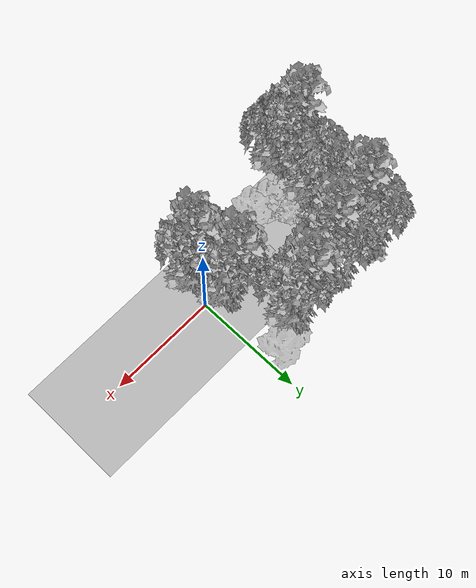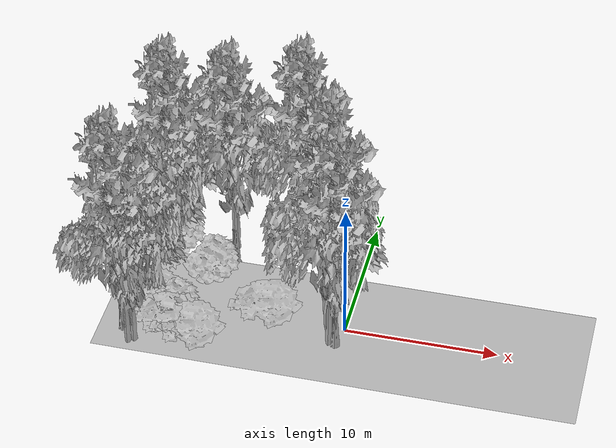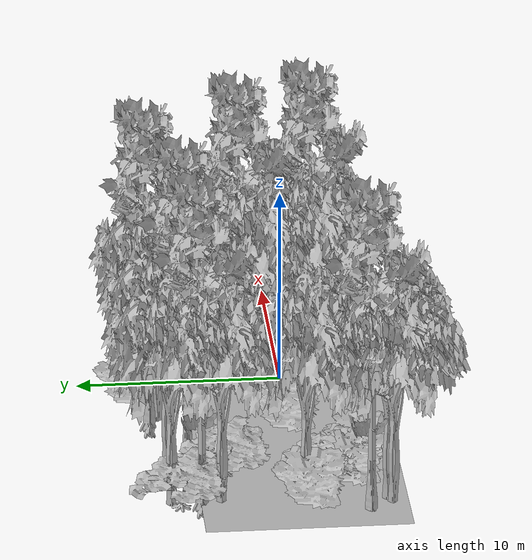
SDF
<sdf version="1.7">
 <world name="default">
  <model name="ground_plane">
   <static>1</static>
   <link name="link">
    <collision name="collision">
     <pose>-50 0 0 0 -0 0</pose>
     <geometry><plane><normal>0 0 1</normal><size>100 100</size></plane></geometry>
     <surface><contact><ode><min_depth>0.01</min_depth><max_vel>0</max_vel></ode></contact></surface>
    </collision>
    <visual name="grass">
     <cast_shadows>0</cast_shadows>
     <geometry>
      <mesh>
       <scale>0.5814285714285714 0.18142857142857144 0.1</scale>
       <uri>file://grass_plane/meshes/grass_plane.dae</uri>
      </mesh>
     </geometry>
    </visual>
   </link>
  </model>
  <model name="Tree 13">
   <static>1</static>
   <pose>-4.208597897966072 6.732384200677938 0 1.57079 -0 0</pose>
   <link name="link">
    <collision name="collision">
     <geometry><mesh><scale>3.5 5 3.5</scale><uri>model://tree_9/meshes/tree_9.obj</uri></mesh></geometry>
    </collision>
    <visual name="visual">
     <geometry><mesh><scale>3.5 5 3.5</scale><uri>model://tree_9/meshes/tree_9.obj</uri></mesh></geometry>
    </visual>
   </link>
  </model>
  <model name="Tree 110">
   <static>1</static>
   <pose>-9.627359830265355 -3.2420105650119186 0 1.57079 -0 0</pose>
   <link name="link">
    <collision name="collision">
     <geometry><mesh><scale>3 2 3</scale><uri>model://tree_3/meshes/tree_3.obj</uri></mesh></geometry>
    </collision>
    <visual name="visual">
     <geometry><mesh><scale>3 2 3</scale><uri>model://tree_3/meshes/tree_3.obj</uri></mesh></geometry>
    </visual>
   </link>
  </model>
  <model name="Tree 114">
   <static>1</static>
   <pose>-12.989910136444372 5.813709315762665 0 1.57079 -0 0</pose>
   <link name="link">
    <collision name="collision">
     <geometry><mesh><scale>4 2.5 4</scale><uri>model://tree_1/meshes/tree_1.obj</uri></mesh></geometry>
    </collision>
    <visual name="visual">
     <geometry><mesh><scale>4 2.5 4</scale><uri>model://tree_1/meshes/tree_1.obj</uri></mesh></geometry>
    </visual>
   </link>
  </model>
  <model name="Tree 116">
   <static>1</static>
   <pose>-1.5195574245508325 2.0348934262743867 0 1.57079 -0 0</pose>
   <link name="link">
    <collision name="collision">
     <geometry><mesh><scale>3.5 5 3.5</scale><uri>model://tree_9/meshes/tree_9.obj</uri></mesh></geometry>
    </collision>
    <visual name="visual">
     <geometry><mesh><scale>3.5 5 3.5</scale><uri>model://tree_9/meshes/tree_9.obj</uri></mesh></geometry>
    </visual>
   </link>
  </model>
  <model name="Tree 138">
   <static>1</static>
   <pose>-12.972883320614287 -0.054346947925958844 0 1.57079 -0 0</pose>
   <link name="link">
    <collision name="collision">
     <geometry><mesh><scale>3.5 5 3.5</scale><uri>model://tree_2/meshes/tree_2.obj</uri></mesh></geometry>
    </collision>
    <visual name="visual">
     <geometry><mesh><scale>3.5 5 3.5</scale><uri>model://tree_2/meshes/tree_2.obj</uri></mesh></geometry>
    </visual>
   </link>
  </model>
  <model name="Tree 151">
   <static>1</static>
   <pose>-8.70038897293096 5.2184296813994315 0 1.57079 -0 0</pose>
   <link name="link">
    <collision name="collision">
     <geometry><mesh><scale>3.5 5 3.5</scale><uri>model://tree_9/meshes/tree_9.obj</uri></mesh></geometry>
    </collision>
    <visual name="visual">
     <geometry><mesh><scale>3.5 5 3.5</scale><uri>model://tree_9/meshes/tree_9.obj</uri></mesh></geometry>
    </visual>
   </link>
  </model>
  <model name="Tree 177">
   <static>1</static>
   <pose>-11.357915308416871 -1.1965015254589204 0 1.57079 -0 0</pose>
   <link name="link">
    <collision name="collision">
     <geometry><mesh><scale>4 2.5 4</scale><uri>model://tree_1/meshes/tree_1.obj</uri></mesh></geometry>
    </collision>
    <visual name="visual">
     <geometry><mesh><scale>4 2.5 4</scale><uri>model://tree_1/meshes/tree_1.obj</uri></mesh></geometry>
    </visual>
   </link>
  </model>
  <model name="Tree 181">
   <static>1</static>
   <pose>-12.855561459063175 6.280732631083023 0 1.57079 -0 0</pose>
   <link name="link">
    <collision name="collision">
     <geometry><mesh><scale>3.5 5 3.5</scale><uri>model://tree_2/meshes/tree_2.obj</uri></mesh></geometry>
    </collision>
    <visual name="visual">
     <geometry><mesh><scale>3.5 5 3.5</scale><uri>model://tree_2/meshes/tree_2.obj</uri></mesh></geometry>
    </visual>
   </link>
  </model>
  <model name="Tree 263">
   <static>1</static>
   <pose>-12.749133077679673 3.900510869652088 0 1.57079 -0 0</pose>
   <link name="link">
    <collision name="collision">
     <geometry><mesh><scale>3.5 5 3.5</scale><uri>model://tree_2/meshes/tree_2.obj</uri></mesh></geometry>
    </collision>
    <visual name="visual">
     <geometry><mesh><scale>3.5 5 3.5</scale><uri>model://tree_2/meshes/tree_2.obj</uri></mesh></geometry>
    </visual>
   </link>
  </model>
  <model name="Tree 271">
   <static>1</static>
   <pose>-0.2975062049254831 -1.5259758058740527 0 1.57079 -0 0</pose>
   <link name="link">
    <collision name="collision">
     <geometry><mesh><scale>3.5 5 3.5</scale><uri>model://tree_9/meshes/tree_9.obj</uri></mesh></geometry>
    </collision>
    <visual name="visual">
     <geometry><mesh><scale>3.5 5 3.5</scale><uri>model://tree_9/meshes/tree_9.obj</uri></mesh></geometry>
    </visual>
   </link>
  </model>
  <model name="Tree 316">
   <static>1</static>
   <pose>-12.712568104381319 4.841574336376475 0 1.57079 -0 0</pose>
   <link name="link">
    <collision name="collision">
     <geometry><mesh><scale>3.5 5 3.5</scale><uri>model://tree_9/meshes/tree_9.obj</uri></mesh></geometry>
    </collision>
    <visual name="visual">
     <geometry><mesh><scale>3.5 5 3.5</scale><uri>model://tree_9/meshes/tree_9.obj</uri></mesh></geometry>
    </visual>
   </link>
  </model>
  <model name="Tree 318">
   <static>1</static>
   <pose>-8.943807249078262 6.203259148169376 0 1.57079 -0 0</pose>
   <link name="link">
    <collision name="collision">
     <geometry><mesh><scale>3.5 5 3.5</scale><uri>model://tree_2/meshes/tree_2.obj</uri></mesh></geometry>
    </collision>
    <visual name="visual">
     <geometry><mesh><scale>3.5 5 3.5</scale><uri>model://tree_2/meshes/tree_2.obj</uri></mesh></geometry>
    </visual>
   </link>
  </model>
  <model name="Tree 329">
   <static>1</static>
   <pose>-13.242727295125569 -0.5632444397771437 0 1.57079 -0 0</pose>
   <link name="link">
    <collision name="collision">
     <geometry><mesh><scale>3 2 3</scale><uri>model://tree_3/meshes/tree_3.obj</uri></mesh></geometry>
    </collision>
    <visual name="visual">
     <geometry><mesh><scale>3 2 3</scale><uri>model://tree_3/meshes/tree_3.obj</uri></mesh></geometry>
    </visual>
   </link>
  </model>
  <model name="Tree 360">
   <static>1</static>
   <pose>-14.02609540923467 -3.040819001528888 0 1.57079 -0 0</pose>
   <link name="link">
    <collision name="collision">
     <geometry><mesh><scale>3.5 5 3.5</scale><uri>model://tree_9/meshes/tree_9.obj</uri></mesh></geometry>
    </collision>
    <visual name="visual">
     <geometry><mesh><scale>3.5 5 3.5</scale><uri>model://tree_9/meshes/tree_9.obj</uri></mesh></geometry>
    </visual>
   </link>
  </model>
  <model name="Tree 362">
   <static>1</static>
   <pose>-0.8587390977589351 -1.440072423649612 0 1.57079 -0 0</pose>
   <link name="link">
    <collision name="collision">
     <geometry><mesh><scale>3.5 5 3.5</scale><uri>model://tree_2/meshes/tree_2.obj</uri></mesh></geometry>
    </collision>
    <visual name="visual">
     <geometry><mesh><scale>3.5 5 3.5</scale><uri>model://tree_2/meshes/tree_2.obj</uri></mesh></geometry>
    </visual>
   </link>
  </model>
  <model name="Tree 371">
   <static>1</static>
   <pose>-13.477627482823415 -4.157329182006382 0 1.57079 -0 0</pose>
   <link name="link">
    <collision name="collision">
     <geometry><mesh><scale>3.5 5 3.5</scale><uri>model://tree_2/meshes/tree_2.obj</uri></mesh></geometry>
    </collision>
    <visual name="visual">
     <geometry><mesh><scale>3.5 5 3.5</scale><uri>model://tree_2/meshes/tree_2.obj</uri></mesh></geometry>
    </visual>
   </link>
  </model>
  <model name="Tree 393">
   <static>1</static>
   <pose>-11.111049215118172 -2.677245807021192 0 1.57079 -0 0</pose>
   <link name="link">
    <collision name="collision">
     <geometry><mesh><scale>3 2 3</scale><uri>model://tree_3/meshes/tree_3.obj</uri></mesh></geometry>
    </collision>
    <visual name="visual">
     <geometry><mesh><scale>3 2 3</scale><uri>model://tree_3/meshes/tree_3.obj</uri></mesh></geometry>
    </visual>
   </link>
  </model>
  <model name="Tree 411">
   <static>1</static>
   <pose>-4.030002079696239 6.298731644551417 0 1.57079 -0 0</pose>
   <link name="link">
    <collision name="collision">
     <geometry><mesh><scale>3.5 5 3.5</scale><uri>model://tree_2/meshes/tree_2.obj</uri></mesh></geometry>
    </collision>
    <visual name="visual">
     <geometry><mesh><scale>3.5 5 3.5</scale><uri>model://tree_2/meshes/tree_2.obj</uri></mesh></geometry>
    </visual>
   </link>
  </model>
  <model name="Tree 441">
   <static>1</static>
   <pose>-5.263510652231474 -0.13900643306970473 0 1.57079 -0 0</pose>
   <link name="link">
    <collision name="collision">
     <geometry><mesh><scale>3 2 3</scale><uri>model://tree_3/meshes/tree_3.obj</uri></mesh></geometry>
    </collision>
    <visual name="visual">
     <geometry><mesh><scale>3 2 3</scale><uri>model://tree_3/meshes/tree_3.obj</uri></mesh></geometry>
    </visual>
   </link>
  </model>
  <model name="Tree 451">
   <static>1</static>
   <pose>-1.9838257842783804 7.154863911662506 0 1.57079 -0 0</pose>
   <link name="link">
    <collision name="collision">
     <geometry><mesh><scale>3 2 3</scale><uri>model://tree_3/meshes/tree_3.obj</uri></mesh></geometry>
    </collision>
    <visual name="visual">
     <geometry><mesh><scale>3 2 3</scale><uri>model://tree_3/meshes/tree_3.obj</uri></mesh></geometry>
    </visual>
   </link>
  </model>
  <model name="Tree 454">
   <static>1</static>
   <pose>-9.968807809566563 3.4969589867203155 0 1.57079 -0 0</pose>
   <link name="link">
    <collision name="collision">
     <geometry><mesh><scale>4 2.5 4</scale><uri>model://tree_1/meshes/tree_1.obj</uri></mesh></geometry>
    </collision>
    <visual name="visual">
     <geometry><mesh><scale>4 2.5 4</scale><uri>model://tree_1/meshes/tree_1.obj</uri></mesh></geometry>
    </visual>
   </link>
  </model>
  <model name="Tree 469">
   <static>1</static>
   <pose>-1.651791560481712 1.2077124068733092 0 1.57079 -0 0</pose>
   <link name="link">
    <collision name="collision">
     <geometry><mesh><scale>3.5 5 3.5</scale><uri>model://tree_2/meshes/tree_2.obj</uri></mesh></geometry>
    </collision>
    <visual name="visual">
     <geometry><mesh><scale>3.5 5 3.5</scale><uri>model://tree_2/meshes/tree_2.obj</uri></mesh></geometry>
    </visual>
   </link>
  </model>
  <model name="Tree 489">
   <static>1</static>
   <pose>-13.111952883612865 -3.9226976972657095 0 1.57079 -0 0</pose>
   <link name="link">
    <collision name="collision">
     <geometry><mesh><scale>3.5 5 3.5</scale><uri>model://tree_2/meshes/tree_2.obj</uri></mesh></geometry>
    </collision>
    <visual name="visual">
     <geometry><mesh><scale>3.5 5 3.5</scale><uri>model://tree_2/meshes/tree_2.obj</uri></mesh></geometry>
    </visual>
   </link>
  </model>
 </world>
</sdf>
